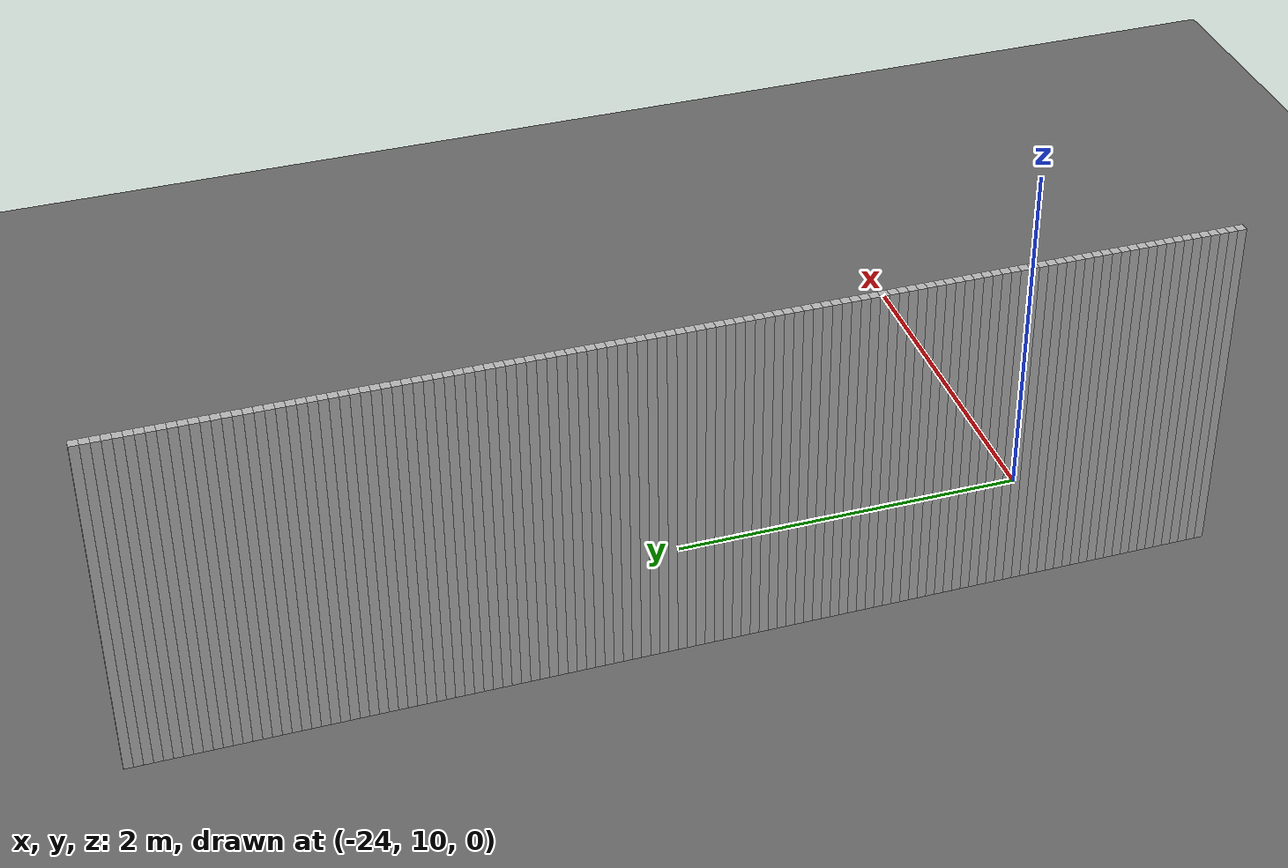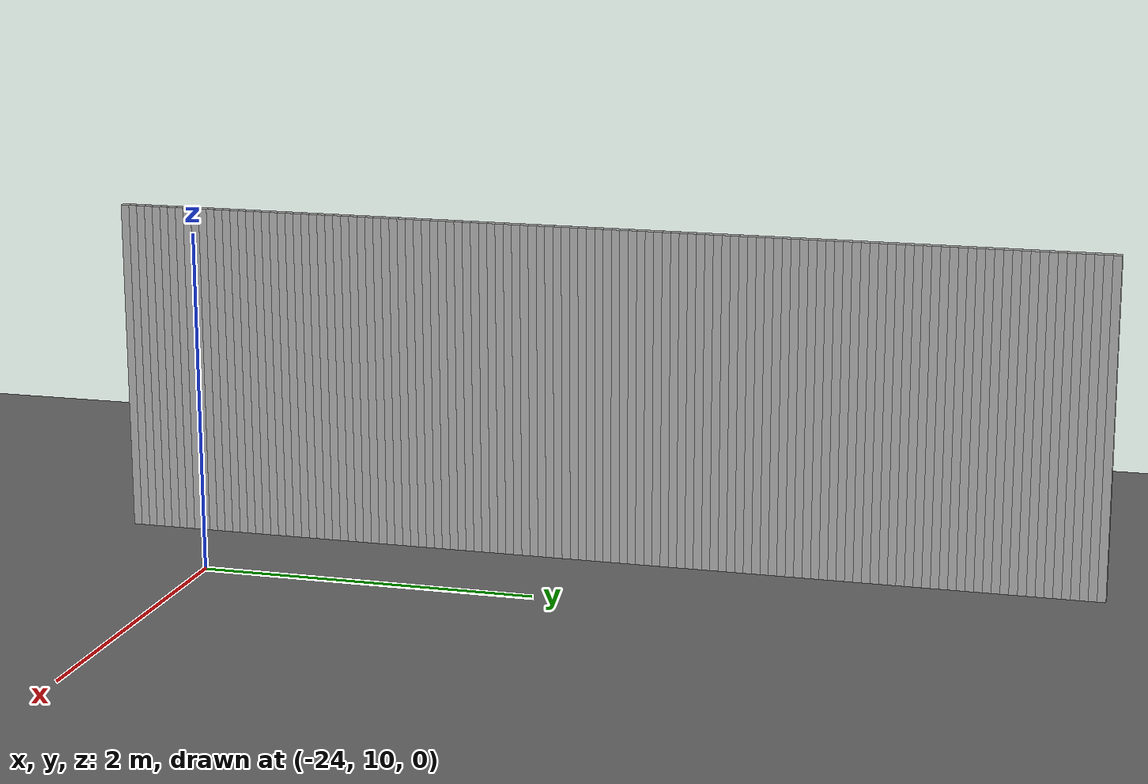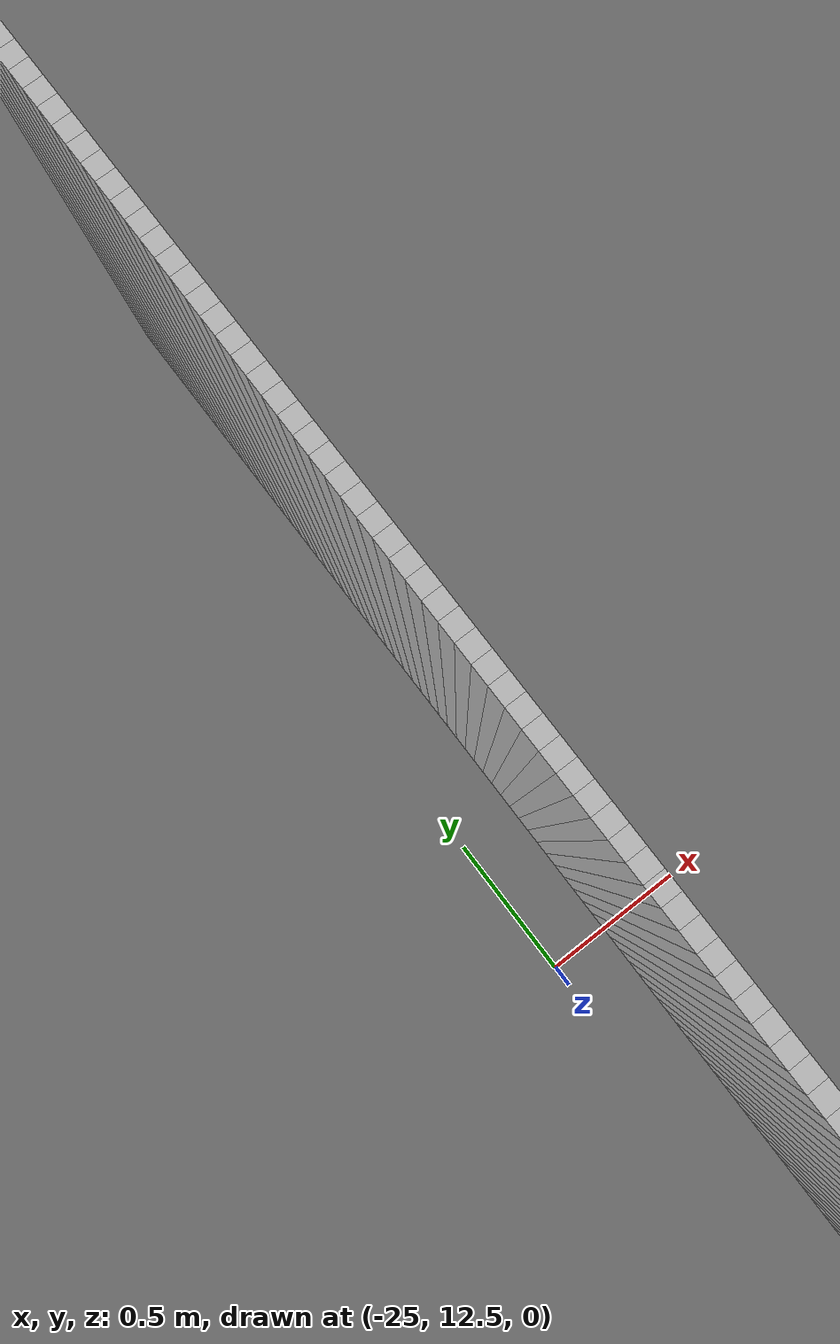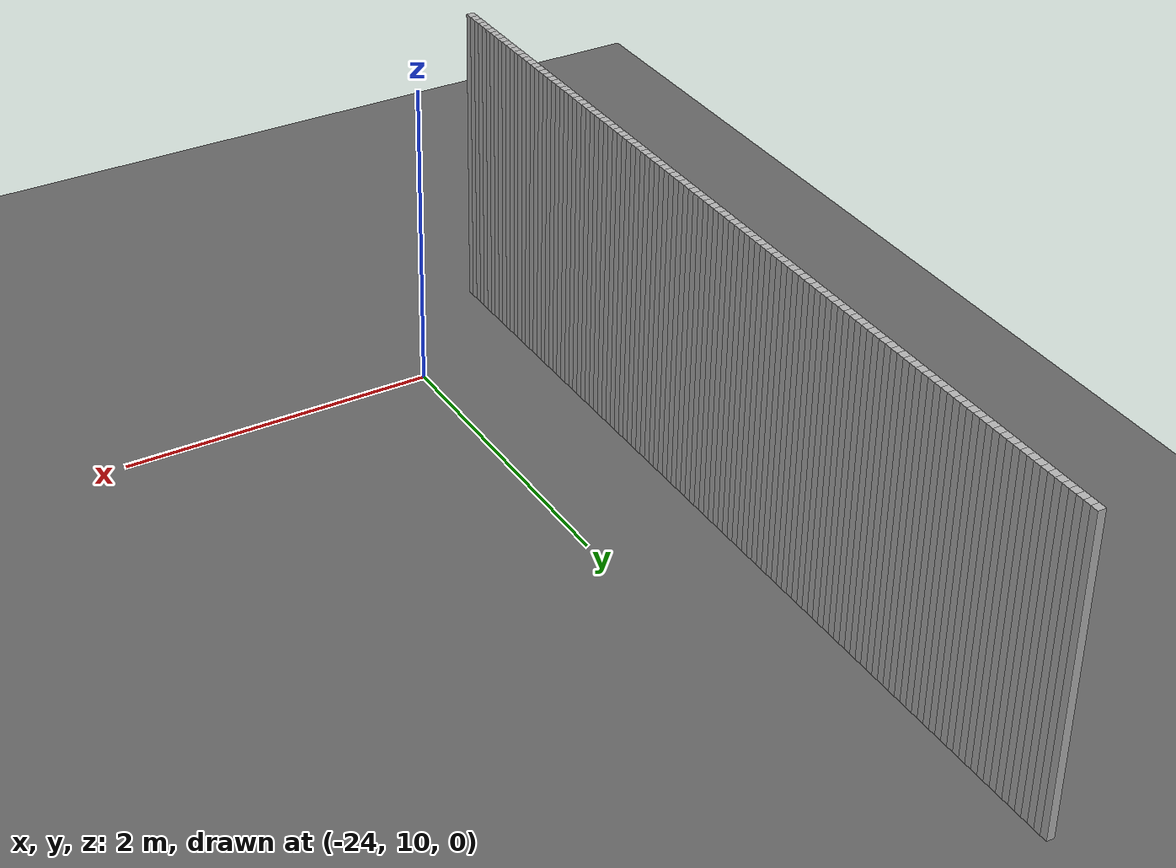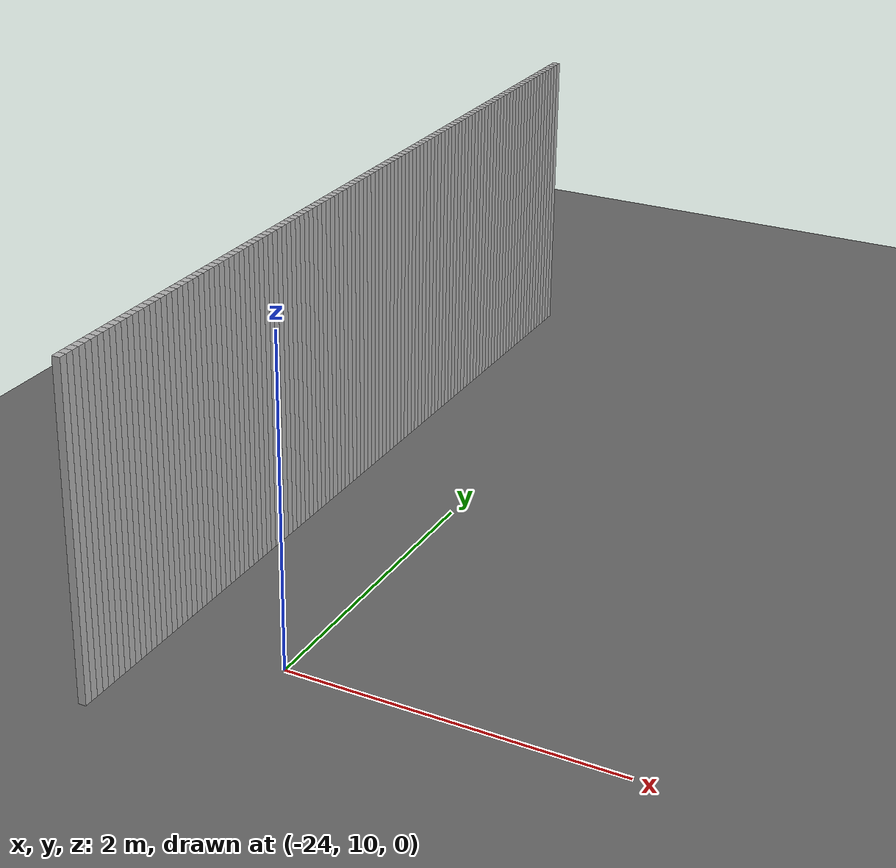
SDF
<sdf version="1.8">
 <world name="real_map">
  <model name="ground">
   <static>true</static>
   <link name="l">
    <collision name="c"><geometry><plane><normal>0 0 1</normal><size>100 100</size></plane></geometry></collision>
    <visual name="v">
     <geometry><plane><normal>0 0 1</normal><size>100 100</size></plane></geometry>
     <material><ambient>0.3 0.3 0.3 1</ambient><diffuse>0.4 0.4 0.4 1</diffuse></material>
    </visual>
   </link>
  </model>
  <model name="walls">
   <static>true</static>
   <link name="w239">
    <pose>-24.766 15.142 1.000 0 0 0</pose>
    <collision name="c"><geometry><box><size>0.050 0.050 2.000</size></box></geometry></collision>
    <visual name="v">
     <geometry><box><size>0.050 0.050 2.000</size></box></geometry>
     <material><ambient>0.7 0.7 0.7 1</ambient><diffuse>0.7 0.7 0.7 1</diffuse></material>
    </visual>
   </link>
   <link name="w241">
    <pose>-24.766 15.092 1.000 0 0 0</pose>
    <collision name="c"><geometry><box><size>0.050 0.050 2.000</size></box></geometry></collision>
    <visual name="v">
     <geometry><box><size>0.050 0.050 2.000</size></box></geometry>
     <material><ambient>0.7 0.7 0.7 1</ambient><diffuse>0.7 0.7 0.7 1</diffuse></material>
    </visual>
   </link>
   <link name="w243">
    <pose>-24.766 15.042 1.000 0 0 0</pose>
    <collision name="c"><geometry><box><size>0.050 0.050 2.000</size></box></geometry></collision>
    <visual name="v">
     <geometry><box><size>0.050 0.050 2.000</size></box></geometry>
     <material><ambient>0.7 0.7 0.7 1</ambient><diffuse>0.7 0.7 0.7 1</diffuse></material>
    </visual>
   </link>
   <link name="w245">
    <pose>-24.766 14.992 1.000 0 0 0</pose>
    <collision name="c"><geometry><box><size>0.050 0.050 2.000</size></box></geometry></collision>
    <visual name="v">
     <geometry><box><size>0.050 0.050 2.000</size></box></geometry>
     <material><ambient>0.7 0.7 0.7 1</ambient><diffuse>0.7 0.7 0.7 1</diffuse></material>
    </visual>
   </link>
   <link name="w247">
    <pose>-24.766 14.942 1.000 0 0 0</pose>
    <collision name="c"><geometry><box><size>0.050 0.050 2.000</size></box></geometry></collision>
    <visual name="v">
     <geometry><box><size>0.050 0.050 2.000</size></box></geometry>
     <material><ambient>0.7 0.7 0.7 1</ambient><diffuse>0.7 0.7 0.7 1</diffuse></material>
    </visual>
   </link>
   <link name="w249">
    <pose>-24.766 14.892 1.000 0 0 0</pose>
    <collision name="c"><geometry><box><size>0.050 0.050 2.000</size></box></geometry></collision>
    <visual name="v">
     <geometry><box><size>0.050 0.050 2.000</size></box></geometry>
     <material><ambient>0.7 0.7 0.7 1</ambient><diffuse>0.7 0.7 0.7 1</diffuse></material>
    </visual>
   </link>
   <link name="w251">
    <pose>-24.766 14.842 1.000 0 0 0</pose>
    <collision name="c"><geometry><box><size>0.050 0.050 2.000</size></box></geometry></collision>
    <visual name="v">
     <geometry><box><size>0.050 0.050 2.000</size></box></geometry>
     <material><ambient>0.7 0.7 0.7 1</ambient><diffuse>0.7 0.7 0.7 1</diffuse></material>
    </visual>
   </link>
   <link name="w253">
    <pose>-24.766 14.792 1.000 0 0 0</pose>
    <collision name="c"><geometry><box><size>0.050 0.050 2.000</size></box></geometry></collision>
    <visual name="v">
     <geometry><box><size>0.050 0.050 2.000</size></box></geometry>
     <material><ambient>0.7 0.7 0.7 1</ambient><diffuse>0.7 0.7 0.7 1</diffuse></material>
    </visual>
   </link>
   <link name="w255">
    <pose>-24.766 14.742 1.000 0 0 0</pose>
    <collision name="c"><geometry><box><size>0.050 0.050 2.000</size></box></geometry></collision>
    <visual name="v">
     <geometry><box><size>0.050 0.050 2.000</size></box></geometry>
     <material><ambient>0.7 0.7 0.7 1</ambient><diffuse>0.7 0.7 0.7 1</diffuse></material>
    </visual>
   </link>
   <link name="w257">
    <pose>-24.766 14.692 1.000 0 0 0</pose>
    <collision name="c"><geometry><box><size>0.050 0.050 2.000</size></box></geometry></collision>
    <visual name="v">
     <geometry><box><size>0.050 0.050 2.000</size></box></geometry>
     <material><ambient>0.7 0.7 0.7 1</ambient><diffuse>0.7 0.7 0.7 1</diffuse></material>
    </visual>
   </link>
   <link name="w259">
    <pose>-24.766 14.642 1.000 0 0 0</pose>
    <collision name="c"><geometry><box><size>0.050 0.050 2.000</size></box></geometry></collision>
    <visual name="v">
     <geometry><box><size>0.050 0.050 2.000</size></box></geometry>
     <material><ambient>0.7 0.7 0.7 1</ambient><diffuse>0.7 0.7 0.7 1</diffuse></material>
    </visual>
   </link>
   <link name="w261">
    <pose>-24.766 14.592 1.000 0 0 0</pose>
    <collision name="c"><geometry><box><size>0.050 0.050 2.000</size></box></geometry></collision>
    <visual name="v">
     <geometry><box><size>0.050 0.050 2.000</size></box></geometry>
     <material><ambient>0.7 0.7 0.7 1</ambient><diffuse>0.7 0.7 0.7 1</diffuse></material>
    </visual>
   </link>
   <link name="w263">
    <pose>-24.766 14.542 1.000 0 0 0</pose>
    <collision name="c"><geometry><box><size>0.050 0.050 2.000</size></box></geometry></collision>
    <visual name="v">
     <geometry><box><size>0.050 0.050 2.000</size></box></geometry>
     <material><ambient>0.7 0.7 0.7 1</ambient><diffuse>0.7 0.7 0.7 1</diffuse></material>
    </visual>
   </link>
   <link name="w265">
    <pose>-24.766 14.492 1.000 0 0 0</pose>
    <collision name="c"><geometry><box><size>0.050 0.050 2.000</size></box></geometry></collision>
    <visual name="v">
     <geometry><box><size>0.050 0.050 2.000</size></box></geometry>
     <material><ambient>0.7 0.7 0.7 1</ambient><diffuse>0.7 0.7 0.7 1</diffuse></material>
    </visual>
   </link>
   <link name="w267">
    <pose>-24.766 14.442 1.000 0 0 0</pose>
    <collision name="c"><geometry><box><size>0.050 0.050 2.000</size></box></geometry></collision>
    <visual name="v">
     <geometry><box><size>0.050 0.050 2.000</size></box></geometry>
     <material><ambient>0.7 0.7 0.7 1</ambient><diffuse>0.7 0.7 0.7 1</diffuse></material>
    </visual>
   </link>
   <link name="w269">
    <pose>-24.766 14.392 1.000 0 0 0</pose>
    <collision name="c"><geometry><box><size>0.050 0.050 2.000</size></box></geometry></collision>
    <visual name="v">
     <geometry><box><size>0.050 0.050 2.000</size></box></geometry>
     <material><ambient>0.7 0.7 0.7 1</ambient><diffuse>0.7 0.7 0.7 1</diffuse></material>
    </visual>
   </link>
   <link name="w271">
    <pose>-24.766 14.342 1.000 0 0 0</pose>
    <collision name="c"><geometry><box><size>0.050 0.050 2.000</size></box></geometry></collision>
    <visual name="v">
     <geometry><box><size>0.050 0.050 2.000</size></box></geometry>
     <material><ambient>0.7 0.7 0.7 1</ambient><diffuse>0.7 0.7 0.7 1</diffuse></material>
    </visual>
   </link>
   <link name="w273">
    <pose>-24.766 14.292 1.000 0 0 0</pose>
    <collision name="c"><geometry><box><size>0.050 0.050 2.000</size></box></geometry></collision>
    <visual name="v">
     <geometry><box><size>0.050 0.050 2.000</size></box></geometry>
     <material><ambient>0.7 0.7 0.7 1</ambient><diffuse>0.7 0.7 0.7 1</diffuse></material>
    </visual>
   </link>
   <link name="w275">
    <pose>-24.766 14.242 1.000 0 0 0</pose>
    <collision name="c"><geometry><box><size>0.050 0.050 2.000</size></box></geometry></collision>
    <visual name="v">
     <geometry><box><size>0.050 0.050 2.000</size></box></geometry>
     <material><ambient>0.7 0.7 0.7 1</ambient><diffuse>0.7 0.7 0.7 1</diffuse></material>
    </visual>
   </link>
   <link name="w277">
    <pose>-24.766 14.192 1.000 0 0 0</pose>
    <collision name="c"><geometry><box><size>0.050 0.050 2.000</size></box></geometry></collision>
    <visual name="v">
     <geometry><box><size>0.050 0.050 2.000</size></box></geometry>
     <material><ambient>0.7 0.7 0.7 1</ambient><diffuse>0.7 0.7 0.7 1</diffuse></material>
    </visual>
   </link>
   <link name="w279">
    <pose>-24.766 14.142 1.000 0 0 0</pose>
    <collision name="c"><geometry><box><size>0.050 0.050 2.000</size></box></geometry></collision>
    <visual name="v">
     <geometry><box><size>0.050 0.050 2.000</size></box></geometry>
     <material><ambient>0.7 0.7 0.7 1</ambient><diffuse>0.7 0.7 0.7 1</diffuse></material>
    </visual>
   </link>
   <link name="w281">
    <pose>-24.766 14.092 1.000 0 0 0</pose>
    <collision name="c"><geometry><box><size>0.050 0.050 2.000</size></box></geometry></collision>
    <visual name="v">
     <geometry><box><size>0.050 0.050 2.000</size></box></geometry>
     <material><ambient>0.7 0.7 0.7 1</ambient><diffuse>0.7 0.7 0.7 1</diffuse></material>
    </visual>
   </link>
   <link name="w283">
    <pose>-24.766 14.042 1.000 0 0 0</pose>
    <collision name="c"><geometry><box><size>0.050 0.050 2.000</size></box></geometry></collision>
    <visual name="v">
     <geometry><box><size>0.050 0.050 2.000</size></box></geometry>
     <material><ambient>0.7 0.7 0.7 1</ambient><diffuse>0.7 0.7 0.7 1</diffuse></material>
    </visual>
   </link>
   <link name="w285">
    <pose>-24.766 13.992 1.000 0 0 0</pose>
    <collision name="c"><geometry><box><size>0.050 0.050 2.000</size></box></geometry></collision>
    <visual name="v">
     <geometry><box><size>0.050 0.050 2.000</size></box></geometry>
     <material><ambient>0.7 0.7 0.7 1</ambient><diffuse>0.7 0.7 0.7 1</diffuse></material>
    </visual>
   </link>
   <link name="w287">
    <pose>-24.766 13.942 1.000 0 0 0</pose>
    <collision name="c"><geometry><box><size>0.050 0.050 2.000</size></box></geometry></collision>
    <visual name="v">
     <geometry><box><size>0.050 0.050 2.000</size></box></geometry>
     <material><ambient>0.7 0.7 0.7 1</ambient><diffuse>0.7 0.7 0.7 1</diffuse></material>
    </visual>
   </link>
   <link name="w289">
    <pose>-24.766 13.892 1.000 0 0 0</pose>
    <collision name="c"><geometry><box><size>0.050 0.050 2.000</size></box></geometry></collision>
    <visual name="v">
     <geometry><box><size>0.050 0.050 2.000</size></box></geometry>
     <material><ambient>0.7 0.7 0.7 1</ambient><diffuse>0.7 0.7 0.7 1</diffuse></material>
    </visual>
   </link>
   <link name="w291">
    <pose>-24.766 13.842 1.000 0 0 0</pose>
    <collision name="c"><geometry><box><size>0.050 0.050 2.000</size></box></geometry></collision>
    <visual name="v">
     <geometry><box><size>0.050 0.050 2.000</size></box></geometry>
     <material><ambient>0.7 0.7 0.7 1</ambient><diffuse>0.7 0.7 0.7 1</diffuse></material>
    </visual>
   </link>
   <link name="w293">
    <pose>-24.766 13.792 1.000 0 0 0</pose>
    <collision name="c"><geometry><box><size>0.050 0.050 2.000</size></box></geometry></collision>
    <visual name="v">
     <geometry><box><size>0.050 0.050 2.000</size></box></geometry>
     <material><ambient>0.7 0.7 0.7 1</ambient><diffuse>0.7 0.7 0.7 1</diffuse></material>
    </visual>
   </link>
   <link name="w295">
    <pose>-24.766 13.742 1.000 0 0 0</pose>
    <collision name="c"><geometry><box><size>0.050 0.050 2.000</size></box></geometry></collision>
    <visual name="v">
     <geometry><box><size>0.050 0.050 2.000</size></box></geometry>
     <material><ambient>0.7 0.7 0.7 1</ambient><diffuse>0.7 0.7 0.7 1</diffuse></material>
    </visual>
   </link>
   <link name="w297">
    <pose>-24.766 13.692 1.000 0 0 0</pose>
    <collision name="c"><geometry><box><size>0.050 0.050 2.000</size></box></geometry></collision>
    <visual name="v">
     <geometry><box><size>0.050 0.050 2.000</size></box></geometry>
     <material><ambient>0.7 0.7 0.7 1</ambient><diffuse>0.7 0.7 0.7 1</diffuse></material>
    </visual>
   </link>
   <link name="w299">
    <pose>-24.766 13.642 1.000 0 0 0</pose>
    <collision name="c"><geometry><box><size>0.050 0.050 2.000</size></box></geometry></collision>
    <visual name="v">
     <geometry><box><size>0.050 0.050 2.000</size></box></geometry>
     <material><ambient>0.7 0.7 0.7 1</ambient><diffuse>0.7 0.7 0.7 1</diffuse></material>
    </visual>
   </link>
   <link name="w301">
    <pose>-24.766 13.592 1.000 0 0 0</pose>
    <collision name="c"><geometry><box><size>0.050 0.050 2.000</size></box></geometry></collision>
    <visual name="v">
     <geometry><box><size>0.050 0.050 2.000</size></box></geometry>
     <material><ambient>0.7 0.7 0.7 1</ambient><diffuse>0.7 0.7 0.7 1</diffuse></material>
    </visual>
   </link>
   <link name="w303">
    <pose>-24.766 13.542 1.000 0 0 0</pose>
    <collision name="c"><geometry><box><size>0.050 0.050 2.000</size></box></geometry></collision>
    <visual name="v">
     <geometry><box><size>0.050 0.050 2.000</size></box></geometry>
     <material><ambient>0.7 0.7 0.7 1</ambient><diffuse>0.7 0.7 0.7 1</diffuse></material>
    </visual>
   </link>
   <link name="w305">
    <pose>-24.766 13.492 1.000 0 0 0</pose>
    <collision name="c"><geometry><box><size>0.050 0.050 2.000</size></box></geometry></collision>
    <visual name="v">
     <geometry><box><size>0.050 0.050 2.000</size></box></geometry>
     <material><ambient>0.7 0.7 0.7 1</ambient><diffuse>0.7 0.7 0.7 1</diffuse></material>
    </visual>
   </link>
   <link name="w307">
    <pose>-24.766 13.442 1.000 0 0 0</pose>
    <collision name="c"><geometry><box><size>0.050 0.050 2.000</size></box></geometry></collision>
    <visual name="v">
     <geometry><box><size>0.050 0.050 2.000</size></box></geometry>
     <material><ambient>0.7 0.7 0.7 1</ambient><diffuse>0.7 0.7 0.7 1</diffuse></material>
    </visual>
   </link>
   <link name="w309">
    <pose>-24.766 13.392 1.000 0 0 0</pose>
    <collision name="c"><geometry><box><size>0.050 0.050 2.000</size></box></geometry></collision>
    <visual name="v">
     <geometry><box><size>0.050 0.050 2.000</size></box></geometry>
     <material><ambient>0.7 0.7 0.7 1</ambient><diffuse>0.7 0.7 0.7 1</diffuse></material>
    </visual>
   </link>
   <link name="w311">
    <pose>-24.766 13.342 1.000 0 0 0</pose>
    <collision name="c"><geometry><box><size>0.050 0.050 2.000</size></box></geometry></collision>
    <visual name="v">
     <geometry><box><size>0.050 0.050 2.000</size></box></geometry>
     <material><ambient>0.7 0.7 0.7 1</ambient><diffuse>0.7 0.7 0.7 1</diffuse></material>
    </visual>
   </link>
   <link name="w313">
    <pose>-24.766 13.292 1.000 0 0 0</pose>
    <collision name="c"><geometry><box><size>0.050 0.050 2.000</size></box></geometry></collision>
    <visual name="v">
     <geometry><box><size>0.050 0.050 2.000</size></box></geometry>
     <material><ambient>0.7 0.7 0.7 1</ambient><diffuse>0.7 0.7 0.7 1</diffuse></material>
    </visual>
   </link>
   <link name="w315">
    <pose>-24.766 13.242 1.000 0 0 0</pose>
    <collision name="c"><geometry><box><size>0.050 0.050 2.000</size></box></geometry></collision>
    <visual name="v">
     <geometry><box><size>0.050 0.050 2.000</size></box></geometry>
     <material><ambient>0.7 0.7 0.7 1</ambient><diffuse>0.7 0.7 0.7 1</diffuse></material>
    </visual>
   </link>
   <link name="w317">
    <pose>-24.766 13.192 1.000 0 0 0</pose>
    <collision name="c"><geometry><box><size>0.050 0.050 2.000</size></box></geometry></collision>
    <visual name="v">
     <geometry><box><size>0.050 0.050 2.000</size></box></geometry>
     <material><ambient>0.7 0.7 0.7 1</ambient><diffuse>0.7 0.7 0.7 1</diffuse></material>
    </visual>
   </link>
   <link name="w319">
    <pose>-24.766 13.142 1.000 0 0 0</pose>
    <collision name="c"><geometry><box><size>0.050 0.050 2.000</size></box></geometry></collision>
    <visual name="v">
     <geometry><box><size>0.050 0.050 2.000</size></box></geometry>
     <material><ambient>0.7 0.7 0.7 1</ambient><diffuse>0.7 0.7 0.7 1</diffuse></material>
    </visual>
   </link>
   <link name="w321">
    <pose>-24.766 13.092 1.000 0 0 0</pose>
    <collision name="c"><geometry><box><size>0.050 0.050 2.000</size></box></geometry></collision>
    <visual name="v">
     <geometry><box><size>0.050 0.050 2.000</size></box></geometry>
     <material><ambient>0.7 0.7 0.7 1</ambient><diffuse>0.7 0.7 0.7 1</diffuse></material>
    </visual>
   </link>
   <link name="w323">
    <pose>-24.766 13.042 1.000 0 0 0</pose>
    <collision name="c"><geometry><box><size>0.050 0.050 2.000</size></box></geometry></collision>
    <visual name="v">
     <geometry><box><size>0.050 0.050 2.000</size></box></geometry>
     <material><ambient>0.7 0.7 0.7 1</ambient><diffuse>0.7 0.7 0.7 1</diffuse></material>
    </visual>
   </link>
   <link name="w325">
    <pose>-24.766 12.992 1.000 0 0 0</pose>
    <collision name="c"><geometry><box><size>0.050 0.050 2.000</size></box></geometry></collision>
    <visual name="v">
     <geometry><box><size>0.050 0.050 2.000</size></box></geometry>
     <material><ambient>0.7 0.7 0.7 1</ambient><diffuse>0.7 0.7 0.7 1</diffuse></material>
    </visual>
   </link>
   <link name="w327">
    <pose>-24.766 12.942 1.000 0 0 0</pose>
    <collision name="c"><geometry><box><size>0.050 0.050 2.000</size></box></geometry></collision>
    <visual name="v">
     <geometry><box><size>0.050 0.050 2.000</size></box></geometry>
     <material><ambient>0.7 0.7 0.7 1</ambient><diffuse>0.7 0.7 0.7 1</diffuse></material>
    </visual>
   </link>
   <link name="w329">
    <pose>-24.766 12.892 1.000 0 0 0</pose>
    <collision name="c"><geometry><box><size>0.050 0.050 2.000</size></box></geometry></collision>
    <visual name="v">
     <geometry><box><size>0.050 0.050 2.000</size></box></geometry>
     <material><ambient>0.7 0.7 0.7 1</ambient><diffuse>0.7 0.7 0.7 1</diffuse></material>
    </visual>
   </link>
   <link name="w331">
    <pose>-24.766 12.842 1.000 0 0 0</pose>
    <collision name="c"><geometry><box><size>0.050 0.050 2.000</size></box></geometry></collision>
    <visual name="v">
     <geometry><box><size>0.050 0.050 2.000</size></box></geometry>
     <material><ambient>0.7 0.7 0.7 1</ambient><diffuse>0.7 0.7 0.7 1</diffuse></material>
    </visual>
   </link>
   <link name="w333">
    <pose>-24.766 12.792 1.000 0 0 0</pose>
    <collision name="c"><geometry><box><size>0.050 0.050 2.000</size></box></geometry></collision>
    <visual name="v">
     <geometry><box><size>0.050 0.050 2.000</size></box></geometry>
     <material><ambient>0.7 0.7 0.7 1</ambient><diffuse>0.7 0.7 0.7 1</diffuse></material>
    </visual>
   </link>
   <link name="w335">
    <pose>-24.766 12.742 1.000 0 0 0</pose>
    <collision name="c"><geometry><box><size>0.050 0.050 2.000</size></box></geometry></collision>
    <visual name="v">
     <geometry><box><size>0.050 0.050 2.000</size></box></geometry>
     <material><ambient>0.7 0.7 0.7 1</ambient><diffuse>0.7 0.7 0.7 1</diffuse></material>
    </visual>
   </link>
   <link name="w337">
    <pose>-24.766 12.692 1.000 0 0 0</pose>
    <collision name="c"><geometry><box><size>0.050 0.050 2.000</size></box></geometry></collision>
    <visual name="v">
     <geometry><box><size>0.050 0.050 2.000</size></box></geometry>
     <material><ambient>0.7 0.7 0.7 1</ambient><diffuse>0.7 0.7 0.7 1</diffuse></material>
    </visual>
   </link>
   <link name="w339">
    <pose>-24.766 12.642 1.000 0 0 0</pose>
    <collision name="c"><geometry><box><size>0.050 0.050 2.000</size></box></geometry></collision>
    <visual name="v">
     <geometry><box><size>0.050 0.050 2.000</size></box></geometry>
     <material><ambient>0.7 0.7 0.7 1</ambient><diffuse>0.7 0.7 0.7 1</diffuse></material>
    </visual>
   </link>
   <link name="w341">
    <pose>-24.766 12.592 1.000 0 0 0</pose>
    <collision name="c"><geometry><box><size>0.050 0.050 2.000</size></box></geometry></collision>
    <visual name="v">
     <geometry><box><size>0.050 0.050 2.000</size></box></geometry>
     <material><ambient>0.7 0.7 0.7 1</ambient><diffuse>0.7 0.7 0.7 1</diffuse></material>
    </visual>
   </link>
   <link name="w343">
    <pose>-24.766 12.542 1.000 0 0 0</pose>
    <collision name="c"><geometry><box><size>0.050 0.050 2.000</size></box></geometry></collision>
    <visual name="v">
     <geometry><box><size>0.050 0.050 2.000</size></box></geometry>
     <material><ambient>0.7 0.7 0.7 1</ambient><diffuse>0.7 0.7 0.7 1</diffuse></material>
    </visual>
   </link>
   <link name="w345">
    <pose>-24.766 12.492 1.000 0 0 0</pose>
    <collision name="c"><geometry><box><size>0.050 0.050 2.000</size></box></geometry></collision>
    <visual name="v">
     <geometry><box><size>0.050 0.050 2.000</size></box></geometry>
     <material><ambient>0.7 0.7 0.7 1</ambient><diffuse>0.7 0.7 0.7 1</diffuse></material>
    </visual>
   </link>
   <link name="w347">
    <pose>-24.766 12.442 1.000 0 0 0</pose>
    <collision name="c"><geometry><box><size>0.050 0.050 2.000</size></box></geometry></collision>
    <visual name="v">
     <geometry><box><size>0.050 0.050 2.000</size></box></geometry>
     <material><ambient>0.7 0.7 0.7 1</ambient><diffuse>0.7 0.7 0.7 1</diffuse></material>
    </visual>
   </link>
   <link name="w349">
    <pose>-24.766 12.392 1.000 0 0 0</pose>
    <collision name="c"><geometry><box><size>0.050 0.050 2.000</size></box></geometry></collision>
    <visual name="v">
     <geometry><box><size>0.050 0.050 2.000</size></box></geometry>
     <material><ambient>0.7 0.7 0.7 1</ambient><diffuse>0.7 0.7 0.7 1</diffuse></material>
    </visual>
   </link>
   <link name="w351">
    <pose>-24.766 12.342 1.000 0 0 0</pose>
    <collision name="c"><geometry><box><size>0.050 0.050 2.000</size></box></geometry></collision>
    <visual name="v">
     <geometry><box><size>0.050 0.050 2.000</size></box></geometry>
     <material><ambient>0.7 0.7 0.7 1</ambient><diffuse>0.7 0.7 0.7 1</diffuse></material>
    </visual>
   </link>
   <link name="w353">
    <pose>-24.766 12.292 1.000 0 0 0</pose>
    <collision name="c"><geometry><box><size>0.050 0.050 2.000</size></box></geometry></collision>
    <visual name="v">
     <geometry><box><size>0.050 0.050 2.000</size></box></geometry>
     <material><ambient>0.7 0.7 0.7 1</ambient><diffuse>0.7 0.7 0.7 1</diffuse></material>
    </visual>
   </link>
   <link name="w355">
    <pose>-24.766 12.242 1.000 0 0 0</pose>
    <collision name="c"><geometry><box><size>0.050 0.050 2.000</size></box></geometry></collision>
    <visual name="v">
     <geometry><box><size>0.050 0.050 2.000</size></box></geometry>
     <material><ambient>0.7 0.7 0.7 1</ambient><diffuse>0.7 0.7 0.7 1</diffuse></material>
    </visual>
   </link>
   <link name="w357">
    <pose>-24.766 12.192 1.000 0 0 0</pose>
    <collision name="c"><geometry><box><size>0.050 0.050 2.000</size></box></geometry></collision>
    <visual name="v">
     <geometry><box><size>0.050 0.050 2.000</size></box></geometry>
     <material><ambient>0.7 0.7 0.7 1</ambient><diffuse>0.7 0.7 0.7 1</diffuse></material>
    </visual>
   </link>
   <link name="w359">
    <pose>-24.766 12.142 1.000 0 0 0</pose>
    <collision name="c"><geometry><box><size>0.050 0.050 2.000</size></box></geometry></collision>
    <visual name="v">
     <geometry><box><size>0.050 0.050 2.000</size></box></geometry>
     <material><ambient>0.7 0.7 0.7 1</ambient><diffuse>0.7 0.7 0.7 1</diffuse></material>
    </visual>
   </link>
   <link name="w361">
    <pose>-24.766 12.092 1.000 0 0 0</pose>
    <collision name="c"><geometry><box><size>0.050 0.050 2.000</size></box></geometry></collision>
    <visual name="v">
     <geometry><box><size>0.050 0.050 2.000</size></box></geometry>
     <material><ambient>0.7 0.7 0.7 1</ambient><diffuse>0.7 0.7 0.7 1</diffuse></material>
    </visual>
   </link>
   <link name="w363">
    <pose>-24.766 12.042 1.000 0 0 0</pose>
    <collision name="c"><geometry><box><size>0.050 0.050 2.000</size></box></geometry></collision>
    <visual name="v">
     <geometry><box><size>0.050 0.050 2.000</size></box></geometry>
     <material><ambient>0.7 0.7 0.7 1</ambient><diffuse>0.7 0.7 0.7 1</diffuse></material>
    </visual>
   </link>
   <link name="w365">
    <pose>-24.766 11.992 1.000 0 0 0</pose>
    <collision name="c"><geometry><box><size>0.050 0.050 2.000</size></box></geometry></collision>
    <visual name="v">
     <geometry><box><size>0.050 0.050 2.000</size></box></geometry>
     <material><ambient>0.7 0.7 0.7 1</ambient><diffuse>0.7 0.7 0.7 1</diffuse></material>
    </visual>
   </link>
   <link name="w367">
    <pose>-24.766 11.942 1.000 0 0 0</pose>
    <collision name="c"><geometry><box><size>0.050 0.050 2.000</size></box></geometry></collision>
    <visual name="v">
     <geometry><box><size>0.050 0.050 2.000</size></box></geometry>
     <material><ambient>0.7 0.7 0.7 1</ambient><diffuse>0.7 0.7 0.7 1</diffuse></material>
    </visual>
   </link>
   <link name="w369">
    <pose>-24.766 11.892 1.000 0 0 0</pose>
    <collision name="c"><geometry><box><size>0.050 0.050 2.000</size></box></geometry></collision>
    <visual name="v">
     <geometry><box><size>0.050 0.050 2.000</size></box></geometry>
     <material><ambient>0.7 0.7 0.7 1</ambient><diffuse>0.7 0.7 0.7 1</diffuse></material>
    </visual>
   </link>
   <link name="w371">
    <pose>-24.766 11.842 1.000 0 0 0</pose>
    <collision name="c"><geometry><box><size>0.050 0.050 2.000</size></box></geometry></collision>
    <visual name="v">
     <geometry><box><size>0.050 0.050 2.000</size></box></geometry>
     <material><ambient>0.7 0.7 0.7 1</ambient><diffuse>0.7 0.7 0.7 1</diffuse></material>
    </visual>
   </link>
   <link name="w373">
    <pose>-24.766 11.792 1.000 0 0 0</pose>
    <collision name="c"><geometry><box><size>0.050 0.050 2.000</size></box></geometry></collision>
    <visual name="v">
     <geometry><box><size>0.050 0.050 2.000</size></box></geometry>
     <material><ambient>0.7 0.7 0.7 1</ambient><diffuse>0.7 0.7 0.7 1</diffuse></material>
    </visual>
   </link>
   <link name="w375">
    <pose>-24.766 11.742 1.000 0 0 0</pose>
    <collision name="c"><geometry><box><size>0.050 0.050 2.000</size></box></geometry></collision>
    <visual name="v">
     <geometry><box><size>0.050 0.050 2.000</size></box></geometry>
     <material><ambient>0.7 0.7 0.7 1</ambient><diffuse>0.7 0.7 0.7 1</diffuse></material>
    </visual>
   </link>
   <link name="w377">
    <pose>-24.766 11.692 1.000 0 0 0</pose>
    <collision name="c"><geometry><box><size>0.050 0.050 2.000</size></box></geometry></collision>
    <visual name="v">
     <geometry><box><size>0.050 0.050 2.000</size></box></geometry>
     <material><ambient>0.7 0.7 0.7 1</ambient><diffuse>0.7 0.7 0.7 1</diffuse></material>
    </visual>
   </link>
   <link name="w379">
    <pose>-24.766 11.642 1.000 0 0 0</pose>
    <collision name="c"><geometry><box><size>0.050 0.050 2.000</size></box></geometry></collision>
    <visual name="v">
     <geometry><box><size>0.050 0.050 2.000</size></box></geometry>
     <material><ambient>0.7 0.7 0.7 1</ambient><diffuse>0.7 0.7 0.7 1</diffuse></material>
    </visual>
   </link>
   <link name="w381">
    <pose>-24.766 11.592 1.000 0 0 0</pose>
    <collision name="c"><geometry><box><size>0.050 0.050 2.000</size></box></geometry></collision>
    <visual name="v">
     <geometry><box><size>0.050 0.050 2.000</size></box></geometry>
     <material><ambient>0.7 0.7 0.7 1</ambient><diffuse>0.7 0.7 0.7 1</diffuse></material>
    </visual>
   </link>
   <link name="w383">
    <pose>-24.766 11.542 1.000 0 0 0</pose>
    <collision name="c"><geometry><box><size>0.050 0.050 2.000</size></box></geometry></collision>
    <visual name="v">
     <geometry><box><size>0.050 0.050 2.000</size></box></geometry>
     <material><ambient>0.7 0.7 0.7 1</ambient><diffuse>0.7 0.7 0.7 1</diffuse></material>
    </visual>
   </link>
   <link name="w385">
    <pose>-24.766 11.492 1.000 0 0 0</pose>
    <collision name="c"><geometry><box><size>0.050 0.050 2.000</size></box></geometry></collision>
    <visual name="v">
     <geometry><box><size>0.050 0.050 2.000</size></box></geometry>
     <material><ambient>0.7 0.7 0.7 1</ambient><diffuse>0.7 0.7 0.7 1</diffuse></material>
    </visual>
   </link>
   <link name="w387">
    <pose>-24.766 11.442 1.000 0 0 0</pose>
    <collision name="c"><geometry><box><size>0.050 0.050 2.000</size></box></geometry></collision>
    <visual name="v">
     <geometry><box><size>0.050 0.050 2.000</size></box></geometry>
     <material><ambient>0.7 0.7 0.7 1</ambient><diffuse>0.7 0.7 0.7 1</diffuse></material>
    </visual>
   </link>
   <link name="w389">
    <pose>-24.766 11.392 1.000 0 0 0</pose>
    <collision name="c"><geometry><box><size>0.050 0.050 2.000</size></box></geometry></collision>
    <visual name="v">
     <geometry><box><size>0.050 0.050 2.000</size></box></geometry>
     <material><ambient>0.7 0.7 0.7 1</ambient><diffuse>0.7 0.7 0.7 1</diffuse></material>
    </visual>
   </link>
   <link name="w391">
    <pose>-24.766 11.342 1.000 0 0 0</pose>
    <collision name="c"><geometry><box><size>0.050 0.050 2.000</size></box></geometry></collision>
    <visual name="v">
     <geometry><box><size>0.050 0.050 2.000</size></box></geometry>
     <material><ambient>0.7 0.7 0.7 1</ambient><diffuse>0.7 0.7 0.7 1</diffuse></material>
    </visual>
   </link>
   <link name="w393">
    <pose>-24.766 11.292 1.000 0 0 0</pose>
    <collision name="c"><geometry><box><size>0.050 0.050 2.000</size></box></geometry></collision>
    <visual name="v">
     <geometry><box><size>0.050 0.050 2.000</size></box></geometry>
     <material><ambient>0.7 0.7 0.7 1</ambient><diffuse>0.7 0.7 0.7 1</diffuse></material>
    </visual>
   </link>
   <link name="w395">
    <pose>-24.766 11.242 1.000 0 0 0</pose>
    <collision name="c"><geometry><box><size>0.050 0.050 2.000</size></box></geometry></collision>
    <visual name="v">
     <geometry><box><size>0.050 0.050 2.000</size></box></geometry>
     <material><ambient>0.7 0.7 0.7 1</ambient><diffuse>0.7 0.7 0.7 1</diffuse></material>
    </visual>
   </link>
   <link name="w397">
    <pose>-24.766 11.192 1.000 0 0 0</pose>
    <collision name="c"><geometry><box><size>0.050 0.050 2.000</size></box></geometry></collision>
    <visual name="v">
     <geometry><box><size>0.050 0.050 2.000</size></box></geometry>
     <material><ambient>0.7 0.7 0.7 1</ambient><diffuse>0.7 0.7 0.7 1</diffuse></material>
    </visual>
   </link>
   <link name="w399">
    <pose>-24.766 11.142 1.000 0 0 0</pose>
    <collision name="c"><geometry><box><size>0.050 0.050 2.000</size></box></geometry></collision>
    <visual name="v">
     <geometry><box><size>0.050 0.050 2.000</size></box></geometry>
     <material><ambient>0.7 0.7 0.7 1</ambient><diffuse>0.7 0.7 0.7 1</diffuse></material>
    </visual>
   </link>
   <link name="w401">
    <pose>-24.766 11.092 1.000 0 0 0</pose>
    <collision name="c"><geometry><box><size>0.050 0.050 2.000</size></box></geometry></collision>
    <visual name="v">
     <geometry><box><size>0.050 0.050 2.000</size></box></geometry>
     <material><ambient>0.7 0.7 0.7 1</ambient><diffuse>0.7 0.7 0.7 1</diffuse></material>
    </visual>
   </link>
   <link name="w403">
    <pose>-24.766 11.042 1.000 0 0 0</pose>
    <collision name="c"><geometry><box><size>0.050 0.050 2.000</size></box></geometry></collision>
    <visual name="v">
     <geometry><box><size>0.050 0.050 2.000</size></box></geometry>
     <material><ambient>0.7 0.7 0.7 1</ambient><diffuse>0.7 0.7 0.7 1</diffuse></material>
    </visual>
   </link>
   <link name="w405">
    <pose>-24.766 10.992 1.000 0 0 0</pose>
    <collision name="c"><geometry><box><size>0.050 0.050 2.000</size></box></geometry></collision>
    <visual name="v">
     <geometry><box><size>0.050 0.050 2.000</size></box></geometry>
     <material><ambient>0.7 0.7 0.7 1</ambient><diffuse>0.7 0.7 0.7 1</diffuse></material>
    </visual>
   </link>
   <link name="w407">
    <pose>-24.766 10.942 1.000 0 0 0</pose>
    <collision name="c"><geometry><box><size>0.050 0.050 2.000</size></box></geometry></collision>
    <visual name="v">
     <geometry><box><size>0.050 0.050 2.000</size></box></geometry>
     <material><ambient>0.7 0.7 0.7 1</ambient><diffuse>0.7 0.7 0.7 1</diffuse></material>
    </visual>
   </link>
   <link name="w409">
    <pose>-24.766 10.892 1.000 0 0 0</pose>
    <collision name="c"><geometry><box><size>0.050 0.050 2.000</size></box></geometry></collision>
    <visual name="v">
     <geometry><box><size>0.050 0.050 2.000</size></box></geometry>
     <material><ambient>0.7 0.7 0.7 1</ambient><diffuse>0.7 0.7 0.7 1</diffuse></material>
    </visual>
   </link>
   <link name="w411">
    <pose>-24.766 10.842 1.000 0 0 0</pose>
    <collision name="c"><geometry><box><size>0.050 0.050 2.000</size></box></geometry></collision>
    <visual name="v">
     <geometry><box><size>0.050 0.050 2.000</size></box></geometry>
     <material><ambient>0.7 0.7 0.7 1</ambient><diffuse>0.7 0.7 0.7 1</diffuse></material>
    </visual>
   </link>
   <link name="w413">
    <pose>-24.766 10.792 1.000 0 0 0</pose>
    <collision name="c"><geometry><box><size>0.050 0.050 2.000</size></box></geometry></collision>
    <visual name="v">
     <geometry><box><size>0.050 0.050 2.000</size></box></geometry>
     <material><ambient>0.7 0.7 0.7 1</ambient><diffuse>0.7 0.7 0.7 1</diffuse></material>
    </visual>
   </link>
   <link name="w415">
    <pose>-24.766 10.742 1.000 0 0 0</pose>
    <collision name="c"><geometry><box><size>0.050 0.050 2.000</size></box></geometry></collision>
    <visual name="v">
     <geometry><box><size>0.050 0.050 2.000</size></box></geometry>
     <material><ambient>0.7 0.7 0.7 1</ambient><diffuse>0.7 0.7 0.7 1</diffuse></material>
    </visual>
   </link>
   <link name="w417">
    <pose>-24.766 10.692 1.000 0 0 0</pose>
    <collision name="c"><geometry><box><size>0.050 0.050 2.000</size></box></geometry></collision>
    <visual name="v">
     <geometry><box><size>0.050 0.050 2.000</size></box></geometry>
     <material><ambient>0.7 0.7 0.7 1</ambient><diffuse>0.7 0.7 0.7 1</diffuse></material>
    </visual>
   </link>
   <link name="w419">
    <pose>-24.766 10.642 1.000 0 0 0</pose>
    <collision name="c"><geometry><box><size>0.050 0.050 2.000</size></box></geometry></collision>
    <visual name="v">
     <geometry><box><size>0.050 0.050 2.000</size></box></geometry>
     <material><ambient>0.7 0.7 0.7 1</ambient><diffuse>0.7 0.7 0.7 1</diffuse></material>
    </visual>
   </link>
   <link name="w421">
    <pose>-24.766 10.592 1.000 0 0 0</pose>
    <collision name="c"><geometry><box><size>0.050 0.050 2.000</size></box></geometry></collision>
    <visual name="v">
     <geometry><box><size>0.050 0.050 2.000</size></box></geometry>
     <material><ambient>0.7 0.7 0.7 1</ambient><diffuse>0.7 0.7 0.7 1</diffuse></material>
    </visual>
   </link>
   <link name="w423">
    <pose>-24.766 10.542 1.000 0 0 0</pose>
    <collision name="c"><geometry><box><size>0.050 0.050 2.000</size></box></geometry></collision>
    <visual name="v">
     <geometry><box><size>0.050 0.050 2.000</size></box></geometry>
     <material><ambient>0.7 0.7 0.7 1</ambient><diffuse>0.7 0.7 0.7 1</diffuse></material>
    </visual>
   </link>
   <link name="w425">
    <pose>-24.766 10.492 1.000 0 0 0</pose>
    <collision name="c"><geometry><box><size>0.050 0.050 2.000</size></box></geometry></collision>
    <visual name="v">
     <geometry><box><size>0.050 0.050 2.000</size></box></geometry>
     <material><ambient>0.7 0.7 0.7 1</ambient><diffuse>0.7 0.7 0.7 1</diffuse></material>
    </visual>
   </link>
   <link name="w427">
    <pose>-24.766 10.442 1.000 0 0 0</pose>
    <collision name="c"><geometry><box><size>0.050 0.050 2.000</size></box></geometry></collision>
    <visual name="v">
     <geometry><box><size>0.050 0.050 2.000</size></box></geometry>
     <material><ambient>0.7 0.7 0.7 1</ambient><diffuse>0.7 0.7 0.7 1</diffuse></material>
    </visual>
   </link>
   <link name="w429">
    <pose>-24.766 10.392 1.000 0 0 0</pose>
    <collision name="c"><geometry><box><size>0.050 0.050 2.000</size></box></geometry></collision>
    <visual name="v">
     <geometry><box><size>0.050 0.050 2.000</size></box></geometry>
     <material><ambient>0.7 0.7 0.7 1</ambient><diffuse>0.7 0.7 0.7 1</diffuse></material>
    </visual>
   </link>
   <link name="w431">
    <pose>-24.766 10.342 1.000 0 0 0</pose>
    <collision name="c"><geometry><box><size>0.050 0.050 2.000</size></box></geometry></collision>
    <visual name="v">
     <geometry><box><size>0.050 0.050 2.000</size></box></geometry>
     <material><ambient>0.7 0.7 0.7 1</ambient><diffuse>0.7 0.7 0.7 1</diffuse></material>
    </visual>
   </link>
   <link name="w433">
    <pose>-24.766 10.292 1.000 0 0 0</pose>
    <collision name="c"><geometry><box><size>0.050 0.050 2.000</size></box></geometry></collision>
    <visual name="v">
     <geometry><box><size>0.050 0.050 2.000</size></box></geometry>
     <material><ambient>0.7 0.7 0.7 1</ambient><diffuse>0.7 0.7 0.7 1</diffuse></material>
    </visual>
   </link>
   <link name="w435">
    <pose>-24.766 10.242 1.000 0 0 0</pose>
    <collision name="c"><geometry><box><size>0.050 0.050 2.000</size></box></geometry></collision>
    <visual name="v">
     <geometry><box><size>0.050 0.050 2.000</size></box></geometry>
     <material><ambient>0.7 0.7 0.7 1</ambient><diffuse>0.7 0.7 0.7 1</diffuse></material>
    </visual>
   </link>
   <link name="w437">
    <pose>-24.766 10.192 1.000 0 0 0</pose>
    <collision name="c"><geometry><box><size>0.050 0.050 2.000</size></box></geometry></collision>
    <visual name="v">
     <geometry><box><size>0.050 0.050 2.000</size></box></geometry>
     <material><ambient>0.7 0.7 0.7 1</ambient><diffuse>0.7 0.7 0.7 1</diffuse></material>
    </visual>
   </link>
   <link name="w439">
    <pose>-24.766 10.142 1.000 0 0 0</pose>
    <collision name="c"><geometry><box><size>0.050 0.050 2.000</size></box></geometry></collision>
    <visual name="v">
     <geometry><box><size>0.050 0.050 2.000</size></box></geometry>
     <material><ambient>0.7 0.7 0.7 1</ambient><diffuse>0.7 0.7 0.7 1</diffuse></material>
    </visual>
   </link>
   <link name="w441">
    <pose>-24.766 10.092 1.000 0 0 0</pose>
    <collision name="c"><geometry><box><size>0.050 0.050 2.000</size></box></geometry></collision>
    <visual name="v">
     <geometry><box><size>0.050 0.050 2.000</size></box></geometry>
     <material><ambient>0.7 0.7 0.7 1</ambient><diffuse>0.7 0.7 0.7 1</diffuse></material>
    </visual>
   </link>
   <link name="w443">
    <pose>-24.766 10.042 1.000 0 0 0</pose>
    <collision name="c"><geometry><box><size>0.050 0.050 2.000</size></box></geometry></collision>
    <visual name="v">
     <geometry><box><size>0.050 0.050 2.000</size></box></geometry>
     <material><ambient>0.7 0.7 0.7 1</ambient><diffuse>0.7 0.7 0.7 1</diffuse></material>
    </visual>
   </link>
   <link name="w445">
    <pose>-24.766 9.992 1.000 0 0 0</pose>
    <collision name="c"><geometry><box><size>0.050 0.050 2.000</size></box></geometry></collision>
    <visual name="v">
     <geometry><box><size>0.050 0.050 2.000</size></box></geometry>
     <material><ambient>0.7 0.7 0.7 1</ambient><diffuse>0.7 0.7 0.7 1</diffuse></material>
    </visual>
   </link>
   <link name="w447">
    <pose>-24.766 9.942 1.000 0 0 0</pose>
    <collision name="c"><geometry><box><size>0.050 0.050 2.000</size></box></geometry></collision>
    <visual name="v">
     <geometry><box><size>0.050 0.050 2.000</size></box></geometry>
     <material><ambient>0.7 0.7 0.7 1</ambient><diffuse>0.7 0.7 0.7 1</diffuse></material>
    </visual>
   </link>
   <link name="w449">
    <pose>-24.766 9.892 1.000 0 0 0</pose>
    <collision name="c"><geometry><box><size>0.050 0.050 2.000</size></box></geometry></collision>
    <visual name="v">
     <geometry><box><size>0.050 0.050 2.000</size></box></geometry>
     <material><ambient>0.7 0.7 0.7 1</ambient><diffuse>0.7 0.7 0.7 1</diffuse></material>
    </visual>
   </link>
   <link name="w451">
    <pose>-24.766 9.842 1.000 0 0 0</pose>
    <collision name="c"><geometry><box><size>0.050 0.050 2.000</size></box></geometry></collision>
    <visual name="v">
     <geometry><box><size>0.050 0.050 2.000</size></box></geometry>
     <material><ambient>0.7 0.7 0.7 1</ambient><diffuse>0.7 0.7 0.7 1</diffuse></material>
    </visual>
   </link>
   <link name="w453">
    <pose>-24.766 9.792 1.000 0 0 0</pose>
    <collision name="c"><geometry><box><size>0.050 0.050 2.000</size></box></geometry></collision>
    <visual name="v">
     <geometry><box><size>0.050 0.050 2.000</size></box></geometry>
     <material><ambient>0.7 0.7 0.7 1</ambient><diffuse>0.7 0.7 0.7 1</diffuse></material>
    </visual>
   </link>
   <link name="w455">
    <pose>-24.766 9.742 1.000 0 0 0</pose>
    <collision name="c"><geometry><box><size>0.050 0.050 2.000</size></box></geometry></collision>
    <visual name="v">
     <geometry><box><size>0.050 0.050 2.000</size></box></geometry>
     <material><ambient>0.7 0.7 0.7 1</ambient><diffuse>0.7 0.7 0.7 1</diffuse></material>
    </visual>
   </link>
   <link name="w457">
    <pose>-24.766 9.692 1.000 0 0 0</pose>
    <collision name="c"><geometry><box><size>0.050 0.050 2.000</size></box></geometry></collision>
    <visual name="v">
     <geometry><box><size>0.050 0.050 2.000</size></box></geometry>
     <material><ambient>0.7 0.7 0.7 1</ambient><diffuse>0.7 0.7 0.7 1</diffuse></material>
    </visual>
   </link>
   <link name="w459">
    <pose>-24.766 9.642 1.000 0 0 0</pose>
    <collision name="c"><geometry><box><size>0.050 0.050 2.000</size></box></geometry></collision>
    <visual name="v">
     <geometry><box><size>0.050 0.050 2.000</size></box></geometry>
     <material><ambient>0.7 0.7 0.7 1</ambient><diffuse>0.7 0.7 0.7 1</diffuse></material>
    </visual>
   </link>
   <link name="w461">
    <pose>-24.766 9.592 1.000 0 0 0</pose>
    <collision name="c"><geometry><box><size>0.050 0.050 2.000</size></box></geometry></collision>
    <visual name="v">
     <geometry><box><size>0.050 0.050 2.000</size></box></geometry>
     <material><ambient>0.7 0.7 0.7 1</ambient><diffuse>0.7 0.7 0.7 1</diffuse></material>
    </visual>
   </link>
   <link name="w463">
    <pose>-24.766 9.542 1.000 0 0 0</pose>
    <collision name="c"><geometry><box><size>0.050 0.050 2.000</size></box></geometry></collision>
    <visual name="v">
     <geometry><box><size>0.050 0.050 2.000</size></box></geometry>
     <material><ambient>0.7 0.7 0.7 1</ambient><diffuse>0.7 0.7 0.7 1</diffuse></material>
    </visual>
   </link>
   <link name="w465">
    <pose>-24.766 9.492 1.000 0 0 0</pose>
    <collision name="c"><geometry><box><size>0.050 0.050 2.000</size></box></geometry></collision>
    <visual name="v">
     <geometry><box><size>0.050 0.050 2.000</size></box></geometry>
     <material><ambient>0.7 0.7 0.7 1</ambient><diffuse>0.7 0.7 0.7 1</diffuse></material>
    </visual>
   </link>
   <link name="w467">
    <pose>-24.766 9.442 1.000 0 0 0</pose>
    <collision name="c"><geometry><box><size>0.050 0.050 2.000</size></box></geometry></collision>
    <visual name="v">
     <geometry><box><size>0.050 0.050 2.000</size></box></geometry>
     <material><ambient>0.7 0.7 0.7 1</ambient><diffuse>0.7 0.7 0.7 1</diffuse></material>
    </visual>
   </link>
   <link name="w469">
    <pose>-24.766 9.392 1.000 0 0 0</pose>
    <collision name="c"><geometry><box><size>0.050 0.050 2.000</size></box></geometry></collision>
    <visual name="v">
     <geometry><box><size>0.050 0.050 2.000</size></box></geometry>
     <material><ambient>0.7 0.7 0.7 1</ambient><diffuse>0.7 0.7 0.7 1</diffuse></material>
    </visual>
   </link>
   <link name="w471">
    <pose>-24.766 9.342 1.000 0 0 0</pose>
    <collision name="c"><geometry><box><size>0.050 0.050 2.000</size></box></geometry></collision>
    <visual name="v">
     <geometry><box><size>0.050 0.050 2.000</size></box></geometry>
     <material><ambient>0.7 0.7 0.7 1</ambient><diffuse>0.7 0.7 0.7 1</diffuse></material>
    </visual>
   </link>
   <link name="w473">
    <pose>-24.766 9.292 1.000 0 0 0</pose>
    <collision name="c"><geometry><box><size>0.050 0.050 2.000</size></box></geometry></collision>
    <visual name="v">
     <geometry><box><size>0.050 0.050 2.000</size></box></geometry>
     <material><ambient>0.7 0.7 0.7 1</ambient><diffuse>0.7 0.7 0.7 1</diffuse></material>
    </visual>
   </link>
   <link name="w475">
    <pose>-24.766 9.242 1.000 0 0 0</pose>
    <collision name="c"><geometry><box><size>0.050 0.050 2.000</size></box></geometry></collision>
    <visual name="v">
     <geometry><box><size>0.050 0.050 2.000</size></box></geometry>
     <material><ambient>0.7 0.7 0.7 1</ambient><diffuse>0.7 0.7 0.7 1</diffuse></material>
    </visual>
   </link>
  </model>
 </world>
</sdf>
